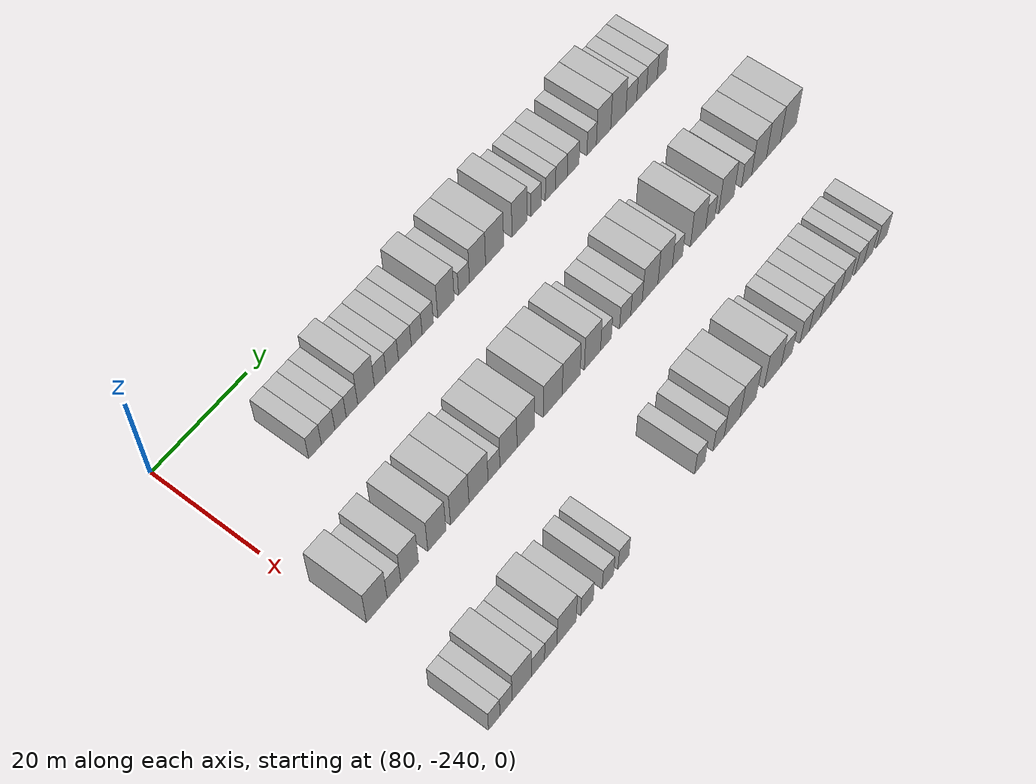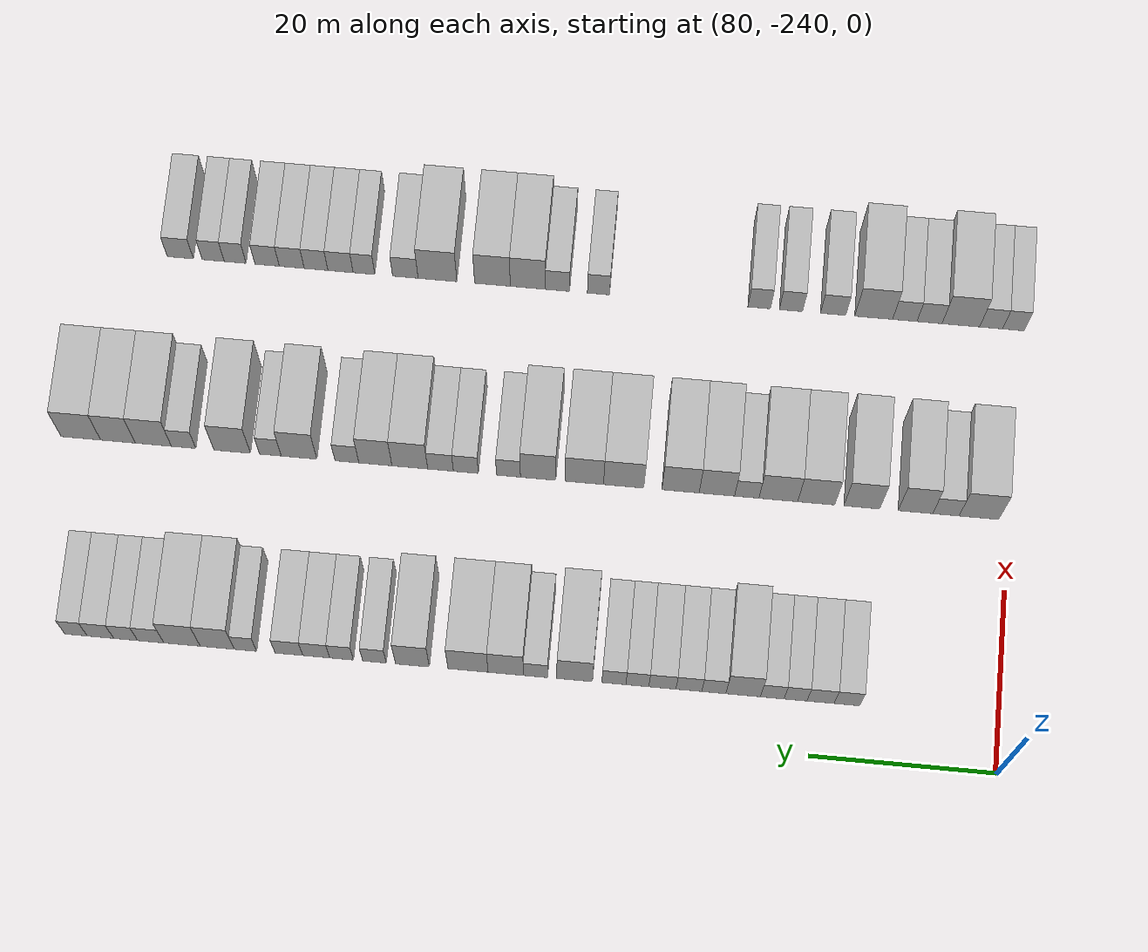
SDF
<sdf version="1.6">
 <world name="default">
  <model name="building_603">
   <static>1</static>
   <pose>91.0000 -223.7125 0 0.000000 0.000000 0.000000</pose>
   <link name="link">
    <pose>0 0 3.00 0 0 0</pose>
    <collision name="collision"><geometry><box><size>10.0000 2.7314 6.0000</size></box></geometry></collision>
    <visual name="visual">
     <cast_shadows>0</cast_shadows>
     <geometry><box><size>10.0000 2.7314 6.0000</size></box></geometry>
     <material>
      <script>
       <uri>model://HANNAS_wall/materials/scripts</uri>
       <uri>model://HANNAS_wall/materials/textures</uri>
       <name>vrc/HANNAS_wall</name>
      </script>
     </material>
    </visual>
   </link>
  </model>
  <model name="building_604">
   <static>1</static>
   <pose>91.0000 -220.8828 0 0.000000 0.000000 0.000000</pose>
   <link name="link">
    <pose>0 0 3.00 0 0 0</pose>
    <collision name="collision"><geometry><box><size>10.0000 2.9280 6.0000</size></box></geometry></collision>
    <visual name="visual">
     <cast_shadows>0</cast_shadows>
     <geometry><box><size>10.0000 2.9280 6.0000</size></box></geometry>
     <material>
      <script>
       <uri>model://HANNAS_wall/materials/scripts</uri>
       <uri>model://HANNAS_wall/materials/textures</uri>
       <name>vrc/HANNAS_wall</name>
      </script>
     </material>
    </visual>
   </link>
  </model>
  <model name="building_605">
   <static>1</static>
   <pose>91.0000 -218.1889 0 0.000000 0.000000 0.000000</pose>
   <link name="link">
    <pose>0 0 3.00 0 0 0</pose>
    <collision name="collision"><geometry><box><size>10.0000 2.4597 6.0000</size></box></geometry></collision>
    <visual name="visual">
     <cast_shadows>0</cast_shadows>
     <geometry><box><size>10.0000 2.4597 6.0000</size></box></geometry>
     <material>
      <script>
       <uri>model://HANNAS_wall/materials/scripts</uri>
       <uri>model://HANNAS_wall/materials/textures</uri>
       <name>vrc/HANNAS_wall</name>
      </script>
     </material>
    </visual>
   </link>
  </model>
  <model name="building_606">
   <static>1</static>
   <pose>91.0000 -215.6946 0 0.000000 0.000000 0.000000</pose>
   <link name="link">
    <pose>0 0 3.00 0 0 0</pose>
    <collision name="collision"><geometry><box><size>10.0000 2.5290 6.0000</size></box></geometry></collision>
    <visual name="visual">
     <cast_shadows>0</cast_shadows>
     <geometry><box><size>10.0000 2.5290 6.0000</size></box></geometry>
     <material>
      <script>
       <uri>model://HANNAS_wall/materials/scripts</uri>
       <uri>model://HANNAS_wall/materials/textures</uri>
       <name>vrc/HANNAS_wall</name>
      </script>
     </material>
    </visual>
   </link>
  </model>
  <model name="building_607">
   <static>1</static>
   <pose>91.0000 -212.5778 0 0.000000 0.000000 0.000000</pose>
   <link name="link">
    <pose>0 0 4.50 0 0 0</pose>
    <collision name="collision"><geometry><box><size>10.0000 3.7046 9.0000</size></box></geometry></collision>
    <visual name="visual">
     <cast_shadows>0</cast_shadows>
     <geometry><box><size>10.0000 3.7046 9.0000</size></box></geometry>
     <material>
      <script>
       <uri>model://HANNAS_wall/materials/scripts</uri>
       <uri>model://HANNAS_wall/materials/textures</uri>
       <name>vrc/HANNAS_wall</name>
      </script>
     </material>
    </visual>
   </link>
  </model>
  <model name="building_608">
   <static>1</static>
   <pose>91.0000 -209.4321 0 0.000000 0.000000 0.000000</pose>
   <link name="link">
    <pose>0 0 3.00 0 0 0</pose>
    <collision name="collision"><geometry><box><size>10.0000 2.5869 6.0000</size></box></geometry></collision>
    <visual name="visual">
     <cast_shadows>0</cast_shadows>
     <geometry><box><size>10.0000 2.5869 6.0000</size></box></geometry>
     <material>
      <script>
       <uri>model://HANNAS_wall/materials/scripts</uri>
       <uri>model://HANNAS_wall/materials/textures</uri>
       <name>vrc/HANNAS_wall</name>
      </script>
     </material>
    </visual>
   </link>
  </model>
  <model name="building_609">
   <static>1</static>
   <pose>91.0000 -206.7527 0 0.000000 0.000000 0.000000</pose>
   <link name="link">
    <pose>0 0 3.00 0 0 0</pose>
    <collision name="collision"><geometry><box><size>10.0000 2.7718 6.0000</size></box></geometry></collision>
    <visual name="visual">
     <cast_shadows>0</cast_shadows>
     <geometry><box><size>10.0000 2.7718 6.0000</size></box></geometry>
     <material>
      <script>
       <uri>model://HANNAS_wall/materials/scripts</uri>
       <uri>model://HANNAS_wall/materials/textures</uri>
       <name>vrc/HANNAS_wall</name>
      </script>
     </material>
    </visual>
   </link>
  </model>
  <model name="building_610">
   <static>1</static>
   <pose>91.0000 -203.9081 0 0.000000 0.000000 0.000000</pose>
   <link name="link">
    <pose>0 0 3.00 0 0 0</pose>
    <collision name="collision"><geometry><box><size>10.0000 2.9176 6.0000</size></box></geometry></collision>
    <visual name="visual">
     <cast_shadows>0</cast_shadows>
     <geometry><box><size>10.0000 2.9176 6.0000</size></box></geometry>
     <material>
      <script>
       <uri>model://HANNAS_wall/materials/scripts</uri>
       <uri>model://HANNAS_wall/materials/textures</uri>
       <name>vrc/HANNAS_wall</name>
      </script>
     </material>
    </visual>
   </link>
  </model>
  <model name="building_611">
   <static>1</static>
   <pose>91.0000 -201.2171 0 0.000000 0.000000 0.000000</pose>
   <link name="link">
    <pose>0 0 3.00 0 0 0</pose>
    <collision name="collision"><geometry><box><size>10.0000 2.4643 6.0000</size></box></geometry></collision>
    <visual name="visual">
     <cast_shadows>0</cast_shadows>
     <geometry><box><size>10.0000 2.4643 6.0000</size></box></geometry>
     <material>
      <script>
       <uri>model://HANNAS_wall/materials/scripts</uri>
       <uri>model://HANNAS_wall/materials/textures</uri>
       <name>vrc/HANNAS_wall</name>
      </script>
     </material>
    </visual>
   </link>
  </model>
  <model name="building_612">
   <static>1</static>
   <pose>91.0000 -198.6938 0 0.000000 0.000000 0.000000</pose>
   <link name="link">
    <pose>0 0 3.00 0 0 0</pose>
    <collision name="collision"><geometry><box><size>10.0000 2.5825 6.0000</size></box></geometry></collision>
    <visual name="visual">
     <cast_shadows>0</cast_shadows>
     <geometry><box><size>10.0000 2.5825 6.0000</size></box></geometry>
     <material>
      <script>
       <uri>model://HANNAS_wall/materials/scripts</uri>
       <uri>model://HANNAS_wall/materials/textures</uri>
       <name>vrc/HANNAS_wall</name>
      </script>
     </material>
    </visual>
   </link>
  </model>
  <model name="building_613">
   <static>1</static>
   <pose>91.0000 -194.4801 0 0.000000 0.000000 0.000000</pose>
   <link name="link">
    <pose>0 0 4.50 0 0 0</pose>
    <collision name="collision"><geometry><box><size>10.0000 3.8449 9.0000</size></box></geometry></collision>
    <visual name="visual">
     <cast_shadows>0</cast_shadows>
     <geometry><box><size>10.0000 3.8449 9.0000</size></box></geometry>
     <material>
      <script>
       <uri>model://HANNAS_wall/materials/scripts</uri>
       <uri>model://HANNAS_wall/materials/textures</uri>
       <name>vrc/HANNAS_wall</name>
      </script>
     </material>
    </visual>
   </link>
  </model>
  <model name="building_614">
   <static>1</static>
   <pose>91.0000 -190.2698 0 0.000000 0.000000 0.000000</pose>
   <link name="link">
    <pose>0 0 3.00 0 0 0</pose>
    <collision name="collision"><geometry><box><size>10.0000 2.5757 6.0000</size></box></geometry></collision>
    <visual name="visual">
     <cast_shadows>0</cast_shadows>
     <geometry><box><size>10.0000 2.5757 6.0000</size></box></geometry>
     <material>
      <script>
       <uri>model://HANNAS_wall/materials/scripts</uri>
       <uri>model://HANNAS_wall/materials/textures</uri>
       <name>vrc/HANNAS_wall</name>
      </script>
     </material>
    </visual>
   </link>
  </model>
  <model name="building_615">
   <static>1</static>
   <pose>91.0000 -187.0722 0 0.000000 0.000000 0.000000</pose>
   <link name="link">
    <pose>0 0 4.50 0 0 0</pose>
    <collision name="collision"><geometry><box><size>10.0000 3.8196 9.0000</size></box></geometry></collision>
    <visual name="visual">
     <cast_shadows>0</cast_shadows>
     <geometry><box><size>10.0000 3.8196 9.0000</size></box></geometry>
     <material>
      <script>
       <uri>model://HANNAS_wall/materials/scripts</uri>
       <uri>model://HANNAS_wall/materials/textures</uri>
       <name>vrc/HANNAS_wall</name>
      </script>
     </material>
    </visual>
   </link>
  </model>
  <model name="building_616">
   <static>1</static>
   <pose>91.0000 -182.9979 0 0.000000 0.000000 0.000000</pose>
   <link name="link">
    <pose>0 0 4.50 0 0 0</pose>
    <collision name="collision"><geometry><box><size>10.0000 4.3289 9.0000</size></box></geometry></collision>
    <visual name="visual">
     <cast_shadows>0</cast_shadows>
     <geometry><box><size>10.0000 4.3289 9.0000</size></box></geometry>
     <material>
      <script>
       <uri>model://HANNAS_wall/materials/scripts</uri>
       <uri>model://HANNAS_wall/materials/textures</uri>
       <name>vrc/HANNAS_wall</name>
      </script>
     </material>
    </visual>
   </link>
  </model>
  <model name="building_617">
   <static>1</static>
   <pose>91.0000 -177.0053 0 0.000000 0.000000 0.000000</pose>
   <link name="link">
    <pose>0 0 4.50 0 0 0</pose>
    <collision name="collision"><geometry><box><size>10.0000 3.6564 9.0000</size></box></geometry></collision>
    <visual name="visual">
     <cast_shadows>0</cast_shadows>
     <geometry><box><size>10.0000 3.6564 9.0000</size></box></geometry>
     <material>
      <script>
       <uri>model://HANNAS_wall/materials/scripts</uri>
       <uri>model://HANNAS_wall/materials/textures</uri>
       <name>vrc/HANNAS_wall</name>
      </script>
     </material>
    </visual>
   </link>
  </model>
  <model name="building_618">
   <static>1</static>
   <pose>91.0000 -172.9043 0 0.000000 0.000000 0.000000</pose>
   <link name="link">
    <pose>0 0 3.00 0 0 0</pose>
    <collision name="collision"><geometry><box><size>10.0000 2.5455 6.0000</size></box></geometry></collision>
    <visual name="visual">
     <cast_shadows>0</cast_shadows>
     <geometry><box><size>10.0000 2.5455 6.0000</size></box></geometry>
     <material>
      <script>
       <uri>model://HANNAS_wall/materials/scripts</uri>
       <uri>model://HANNAS_wall/materials/textures</uri>
       <name>vrc/HANNAS_wall</name>
      </script>
     </material>
    </visual>
   </link>
  </model>
  <model name="building_619">
   <static>1</static>
   <pose>91.0000 -169.3547 0 0.000000 0.000000 0.000000</pose>
   <link name="link">
    <pose>0 0 3.00 0 0 0</pose>
    <collision name="collision"><geometry><box><size>10.0000 2.5538 6.0000</size></box></geometry></collision>
    <visual name="visual">
     <cast_shadows>0</cast_shadows>
     <geometry><box><size>10.0000 2.5538 6.0000</size></box></geometry>
     <material>
      <script>
       <uri>model://HANNAS_wall/materials/scripts</uri>
       <uri>model://HANNAS_wall/materials/textures</uri>
       <name>vrc/HANNAS_wall</name>
      </script>
     </material>
    </visual>
   </link>
  </model>
  <model name="building_620">
   <static>1</static>
   <pose>91.0000 -166.6211 0 0.000000 0.000000 0.000000</pose>
   <link name="link">
    <pose>0 0 3.00 0 0 0</pose>
    <collision name="collision"><geometry><box><size>10.0000 2.9133 6.0000</size></box></geometry></collision>
    <visual name="visual">
     <cast_shadows>0</cast_shadows>
     <geometry><box><size>10.0000 2.9133 6.0000</size></box></geometry>
     <material>
      <script>
       <uri>model://HANNAS_wall/materials/scripts</uri>
       <uri>model://HANNAS_wall/materials/textures</uri>
       <name>vrc/HANNAS_wall</name>
      </script>
     </material>
    </visual>
   </link>
  </model>
  <model name="building_621">
   <static>1</static>
   <pose>91.0000 -163.6671 0 0.000000 0.000000 0.000000</pose>
   <link name="link">
    <pose>0 0 3.00 0 0 0</pose>
    <collision name="collision"><geometry><box><size>10.0000 2.9948 6.0000</size></box></geometry></collision>
    <visual name="visual">
     <cast_shadows>0</cast_shadows>
     <geometry><box><size>10.0000 2.9948 6.0000</size></box></geometry>
     <material>
      <script>
       <uri>model://HANNAS_wall/materials/scripts</uri>
       <uri>model://HANNAS_wall/materials/textures</uri>
       <name>vrc/HANNAS_wall</name>
      </script>
     </material>
    </visual>
   </link>
  </model>
  <model name="building_622">
   <static>1</static>
   <pose>91.0000 -158.9616 0 0.000000 0.000000 0.000000</pose>
   <link name="link">
    <pose>0 0 3.00 0 0 0</pose>
    <collision name="collision"><geometry><box><size>10.0000 2.4163 6.0000</size></box></geometry></collision>
    <visual name="visual">
     <cast_shadows>0</cast_shadows>
     <geometry><box><size>10.0000 2.4163 6.0000</size></box></geometry>
     <material>
      <script>
       <uri>model://HANNAS_wall/materials/scripts</uri>
       <uri>model://HANNAS_wall/materials/textures</uri>
       <name>vrc/HANNAS_wall</name>
      </script>
     </material>
    </visual>
   </link>
  </model>
  <model name="building_623">
   <static>1</static>
   <pose>91.0000 -155.9003 0 0.000000 0.000000 0.000000</pose>
   <link name="link">
    <pose>0 0 4.50 0 0 0</pose>
    <collision name="collision"><geometry><box><size>10.0000 3.7063 9.0000</size></box></geometry></collision>
    <visual name="visual">
     <cast_shadows>0</cast_shadows>
     <geometry><box><size>10.0000 3.7063 9.0000</size></box></geometry>
     <material>
      <script>
       <uri>model://HANNAS_wall/materials/scripts</uri>
       <uri>model://HANNAS_wall/materials/textures</uri>
       <name>vrc/HANNAS_wall</name>
      </script>
     </material>
    </visual>
   </link>
  </model>
  <model name="building_624">
   <static>1</static>
   <pose>91.0000 -152.0762 0 0.000000 0.000000 0.000000</pose>
   <link name="link">
    <pose>0 0 4.50 0 0 0</pose>
    <collision name="collision"><geometry><box><size>10.0000 3.9418 9.0000</size></box></geometry></collision>
    <visual name="visual">
     <cast_shadows>0</cast_shadows>
     <geometry><box><size>10.0000 3.9418 9.0000</size></box></geometry>
     <material>
      <script>
       <uri>model://HANNAS_wall/materials/scripts</uri>
       <uri>model://HANNAS_wall/materials/textures</uri>
       <name>vrc/HANNAS_wall</name>
      </script>
     </material>
    </visual>
   </link>
  </model>
  <model name="building_625">
   <static>1</static>
   <pose>91.0000 -148.6849 0 0.000000 0.000000 0.000000</pose>
   <link name="link">
    <pose>0 0 3.00 0 0 0</pose>
    <collision name="collision"><geometry><box><size>10.0000 2.8409 6.0000</size></box></geometry></collision>
    <visual name="visual">
     <cast_shadows>0</cast_shadows>
     <geometry><box><size>10.0000 2.8409 6.0000</size></box></geometry>
     <material>
      <script>
       <uri>model://HANNAS_wall/materials/scripts</uri>
       <uri>model://HANNAS_wall/materials/textures</uri>
       <name>vrc/HANNAS_wall</name>
      </script>
     </material>
    </visual>
   </link>
  </model>
  <model name="building_626">
   <static>1</static>
   <pose>91.0000 -145.9632 0 0.000000 0.000000 0.000000</pose>
   <link name="link">
    <pose>0 0 3.00 0 0 0</pose>
    <collision name="collision"><geometry><box><size>10.0000 2.6025 6.0000</size></box></geometry></collision>
    <visual name="visual">
     <cast_shadows>0</cast_shadows>
     <geometry><box><size>10.0000 2.6025 6.0000</size></box></geometry>
     <material>
      <script>
       <uri>model://HANNAS_wall/materials/scripts</uri>
       <uri>model://HANNAS_wall/materials/textures</uri>
       <name>vrc/HANNAS_wall</name>
      </script>
     </material>
    </visual>
   </link>
  </model>
  <model name="building_627">
   <static>1</static>
   <pose>91.0000 -143.2284 0 0.000000 0.000000 0.000000</pose>
   <link name="link">
    <pose>0 0 3.00 0 0 0</pose>
    <collision name="collision"><geometry><box><size>10.0000 2.8670 6.0000</size></box></geometry></collision>
    <visual name="visual">
     <cast_shadows>0</cast_shadows>
     <geometry><box><size>10.0000 2.8670 6.0000</size></box></geometry>
     <material>
      <script>
       <uri>model://HANNAS_wall/materials/scripts</uri>
       <uri>model://HANNAS_wall/materials/textures</uri>
       <name>vrc/HANNAS_wall</name>
      </script>
     </material>
    </visual>
   </link>
  </model>
  <model name="building_628">
   <static>1</static>
   <pose>91.0000 -140.5809 0 0.000000 0.000000 0.000000</pose>
   <link name="link">
    <pose>0 0 3.00 0 0 0</pose>
    <collision name="collision"><geometry><box><size>10.0000 2.4280 6.0000</size></box></geometry></collision>
    <visual name="visual">
     <cast_shadows>0</cast_shadows>
     <geometry><box><size>10.0000 2.4280 6.0000</size></box></geometry>
     <material>
      <script>
       <uri>model://HANNAS_wall/materials/scripts</uri>
       <uri>model://HANNAS_wall/materials/textures</uri>
       <name>vrc/HANNAS_wall</name>
      </script>
     </material>
    </visual>
   </link>
  </model>
  <model name="building_792">
   <static>1</static>
   <pose>113.0000 -236.7691 0 0.000000 0.000000 0.000000</pose>
   <link name="link">
    <pose>0 0 4.50 0 0 0</pose>
    <collision name="collision"><geometry><box><size>10.0000 4.3307 9.0000</size></box></geometry></collision>
    <visual name="visual">
     <cast_shadows>0</cast_shadows>
     <geometry><box><size>10.0000 4.3307 9.0000</size></box></geometry>
     <material>
      <script>
       <uri>model://HANNAS_wall/materials/scripts</uri>
       <uri>model://HANNAS_wall/materials/textures</uri>
       <name>vrc/HANNAS_wall</name>
      </script>
     </material>
    </visual>
   </link>
  </model>
  <model name="building_793">
   <static>1</static>
   <pose>113.0000 -233.1613 0 0.000000 0.000000 0.000000</pose>
   <link name="link">
    <pose>0 0 3.00 0 0 0</pose>
    <collision name="collision"><geometry><box><size>10.0000 2.8848 6.0000</size></box></geometry></collision>
    <visual name="visual">
     <cast_shadows>0</cast_shadows>
     <geometry><box><size>10.0000 2.8848 6.0000</size></box></geometry>
     <material>
      <script>
       <uri>model://HANNAS_wall/materials/scripts</uri>
       <uri>model://HANNAS_wall/materials/textures</uri>
       <name>vrc/HANNAS_wall</name>
      </script>
     </material>
    </visual>
   </link>
  </model>
  <model name="building_794">
   <static>1</static>
   <pose>113.0000 -229.8340 0 0.000000 0.000000 0.000000</pose>
   <link name="link">
    <pose>0 0 4.50 0 0 0</pose>
    <collision name="collision"><geometry><box><size>10.0000 3.7698 9.0000</size></box></geometry></collision>
    <visual name="visual">
     <cast_shadows>0</cast_shadows>
     <geometry><box><size>10.0000 3.7698 9.0000</size></box></geometry>
     <material>
      <script>
       <uri>model://HANNAS_wall/materials/scripts</uri>
       <uri>model://HANNAS_wall/materials/textures</uri>
       <name>vrc/HANNAS_wall</name>
      </script>
     </material>
    </visual>
   </link>
  </model>
  <model name="building_795">
   <static>1</static>
   <pose>113.0000 -223.9851 0 0.000000 0.000000 0.000000</pose>
   <link name="link">
    <pose>0 0 4.50 0 0 0</pose>
    <collision name="collision"><geometry><box><size>10.0000 3.9279 9.0000</size></box></geometry></collision>
    <visual name="visual">
     <cast_shadows>0</cast_shadows>
     <geometry><box><size>10.0000 3.9279 9.0000</size></box></geometry>
     <material>
      <script>
       <uri>model://HANNAS_wall/materials/scripts</uri>
       <uri>model://HANNAS_wall/materials/textures</uri>
       <name>vrc/HANNAS_wall</name>
      </script>
     </material>
    </visual>
   </link>
  </model>
  <model name="building_796">
   <static>1</static>
   <pose>113.0000 -218.9914 0 0.000000 0.000000 0.000000</pose>
   <link name="link">
    <pose>0 0 4.50 0 0 0</pose>
    <collision name="collision"><geometry><box><size>10.0000 4.0594 9.0000</size></box></geometry></collision>
    <visual name="visual">
     <cast_shadows>0</cast_shadows>
     <geometry><box><size>10.0000 4.0594 9.0000</size></box></geometry>
     <material>
      <script>
       <uri>model://HANNAS_wall/materials/scripts</uri>
       <uri>model://HANNAS_wall/materials/textures</uri>
       <name>vrc/HANNAS_wall</name>
      </script>
     </material>
    </visual>
   </link>
  </model>
  <model name="building_797">
   <static>1</static>
   <pose>113.0000 -214.8413 0 0.000000 0.000000 0.000000</pose>
   <link name="link">
    <pose>0 0 4.50 0 0 0</pose>
    <collision name="collision"><geometry><box><size>10.0000 4.2407 9.0000</size></box></geometry></collision>
    <visual name="visual">
     <cast_shadows>0</cast_shadows>
     <geometry><box><size>10.0000 4.2407 9.0000</size></box></geometry>
     <material>
      <script>
       <uri>model://HANNAS_wall/materials/scripts</uri>
       <uri>model://HANNAS_wall/materials/textures</uri>
       <name>vrc/HANNAS_wall</name>
      </script>
     </material>
    </visual>
   </link>
  </model>
  <model name="building_798">
   <static>1</static>
   <pose>113.0000 -211.3909 0 0.000000 0.000000 0.000000</pose>
   <link name="link">
    <pose>0 0 3.00 0 0 0</pose>
    <collision name="collision"><geometry><box><size>10.0000 2.6601 6.0000</size></box></geometry></collision>
    <visual name="visual">
     <cast_shadows>0</cast_shadows>
     <geometry><box><size>10.0000 2.6601 6.0000</size></box></geometry>
     <material>
      <script>
       <uri>model://HANNAS_wall/materials/scripts</uri>
       <uri>model://HANNAS_wall/materials/textures</uri>
       <name>vrc/HANNAS_wall</name>
      </script>
     </material>
    </visual>
   </link>
  </model>
  <model name="building_799">
   <static>1</static>
   <pose>113.0000 -208.1153 0 0.000000 0.000000 0.000000</pose>
   <link name="link">
    <pose>0 0 4.50 0 0 0</pose>
    <collision name="collision"><geometry><box><size>10.0000 3.8912 9.0000</size></box></geometry></collision>
    <visual name="visual">
     <cast_shadows>0</cast_shadows>
     <geometry><box><size>10.0000 3.8912 9.0000</size></box></geometry>
     <material>
      <script>
       <uri>model://HANNAS_wall/materials/scripts</uri>
       <uri>model://HANNAS_wall/materials/textures</uri>
       <name>vrc/HANNAS_wall</name>
      </script>
     </material>
    </visual>
   </link>
  </model>
  <model name="building_800">
   <static>1</static>
   <pose>113.0000 -204.1293 0 0.000000 0.000000 0.000000</pose>
   <link name="link">
    <pose>0 0 4.50 0 0 0</pose>
    <collision name="collision"><geometry><box><size>10.0000 4.0808 9.0000</size></box></geometry></collision>
    <visual name="visual">
     <cast_shadows>0</cast_shadows>
     <geometry><box><size>10.0000 4.0808 9.0000</size></box></geometry>
     <material>
      <script>
       <uri>model://HANNAS_wall/materials/scripts</uri>
       <uri>model://HANNAS_wall/materials/textures</uri>
       <name>vrc/HANNAS_wall</name>
      </script>
     </material>
    </visual>
   </link>
  </model>
  <model name="building_801">
   <static>1</static>
   <pose>113.0000 -197.8849 0 0.000000 0.000000 0.000000</pose>
   <link name="link">
    <pose>0 0 4.50 0 0 0</pose>
    <collision name="collision"><geometry><box><size>10.0000 4.4080 9.0000</size></box></geometry></collision>
    <visual name="visual">
     <cast_shadows>0</cast_shadows>
     <geometry><box><size>10.0000 4.4080 9.0000</size></box></geometry>
     <material>
      <script>
       <uri>model://HANNAS_wall/materials/scripts</uri>
       <uri>model://HANNAS_wall/materials/textures</uri>
       <name>vrc/HANNAS_wall</name>
      </script>
     </material>
    </visual>
   </link>
  </model>
  <model name="building_802">
   <static>1</static>
   <pose>113.0000 -193.5605 0 0.000000 0.000000 0.000000</pose>
   <link name="link">
    <pose>0 0 4.50 0 0 0</pose>
    <collision name="collision"><geometry><box><size>10.0000 4.2409 9.0000</size></box></geometry></collision>
    <visual name="visual">
     <cast_shadows>0</cast_shadows>
     <geometry><box><size>10.0000 4.2409 9.0000</size></box></geometry>
     <material>
      <script>
       <uri>model://HANNAS_wall/materials/scripts</uri>
       <uri>model://HANNAS_wall/materials/textures</uri>
       <name>vrc/HANNAS_wall</name>
      </script>
     </material>
    </visual>
   </link>
  </model>
  <model name="building_803">
   <static>1</static>
   <pose>113.0000 -188.4972 0 0.000000 0.000000 0.000000</pose>
   <link name="link">
    <pose>0 0 4.50 0 0 0</pose>
    <collision name="collision"><geometry><box><size>10.0000 3.8856 9.0000</size></box></geometry></collision>
    <visual name="visual">
     <cast_shadows>0</cast_shadows>
     <geometry><box><size>10.0000 3.8856 9.0000</size></box></geometry>
     <material>
      <script>
       <uri>model://HANNAS_wall/materials/scripts</uri>
       <uri>model://HANNAS_wall/materials/textures</uri>
       <name>vrc/HANNAS_wall</name>
      </script>
     </material>
    </visual>
   </link>
  </model>
  <model name="building_804">
   <static>1</static>
   <pose>113.0000 -185.2395 0 0.000000 0.000000 0.000000</pose>
   <link name="link">
    <pose>0 0 3.00 0 0 0</pose>
    <collision name="collision"><geometry><box><size>10.0000 2.6298 6.0000</size></box></geometry></collision>
    <visual name="visual">
     <cast_shadows>0</cast_shadows>
     <geometry><box><size>10.0000 2.6298 6.0000</size></box></geometry>
     <material>
      <script>
       <uri>model://HANNAS_wall/materials/scripts</uri>
       <uri>model://HANNAS_wall/materials/textures</uri>
       <name>vrc/HANNAS_wall</name>
      </script>
     </material>
    </visual>
   </link>
  </model>
  <model name="building_805">
   <static>1</static>
   <pose>113.0000 -180.5488 0 0.000000 0.000000 0.000000</pose>
   <link name="link">
    <pose>0 0 3.00 0 0 0</pose>
    <collision name="collision"><geometry><box><size>10.0000 2.7516 6.0000</size></box></geometry></collision>
    <visual name="visual">
     <cast_shadows>0</cast_shadows>
     <geometry><box><size>10.0000 2.7516 6.0000</size></box></geometry>
     <material>
      <script>
       <uri>model://HANNAS_wall/materials/scripts</uri>
       <uri>model://HANNAS_wall/materials/textures</uri>
       <name>vrc/HANNAS_wall</name>
      </script>
     </material>
    </visual>
   </link>
  </model>
  <model name="building_806">
   <static>1</static>
   <pose>113.0000 -177.7592 0 0.000000 0.000000 0.000000</pose>
   <link name="link">
    <pose>0 0 3.00 0 0 0</pose>
    <collision name="collision"><geometry><box><size>10.0000 2.8277 6.0000</size></box></geometry></collision>
    <visual name="visual">
     <cast_shadows>0</cast_shadows>
     <geometry><box><size>10.0000 2.8277 6.0000</size></box></geometry>
     <material>
      <script>
       <uri>model://HANNAS_wall/materials/scripts</uri>
       <uri>model://HANNAS_wall/materials/textures</uri>
       <name>vrc/HANNAS_wall</name>
      </script>
     </material>
    </visual>
   </link>
  </model>
  <model name="building_807">
   <static>1</static>
   <pose>113.0000 -174.3783 0 0.000000 0.000000 0.000000</pose>
   <link name="link">
    <pose>0 0 4.50 0 0 0</pose>
    <collision name="collision"><geometry><box><size>10.0000 3.9342 9.0000</size></box></geometry></collision>
    <visual name="visual">
     <cast_shadows>0</cast_shadows>
     <geometry><box><size>10.0000 3.9342 9.0000</size></box></geometry>
     <material>
      <script>
       <uri>model://HANNAS_wall/materials/scripts</uri>
       <uri>model://HANNAS_wall/materials/textures</uri>
       <name>vrc/HANNAS_wall</name>
      </script>
     </material>
    </visual>
   </link>
  </model>
  <model name="building_808">
   <static>1</static>
   <pose>113.0000 -170.5831 0 0.000000 0.000000 0.000000</pose>
   <link name="link">
    <pose>0 0 4.50 0 0 0</pose>
    <collision name="collision"><geometry><box><size>10.0000 3.6562 9.0000</size></box></geometry></collision>
    <visual name="visual">
     <cast_shadows>0</cast_shadows>
     <geometry><box><size>10.0000 3.6562 9.0000</size></box></geometry>
     <material>
      <script>
       <uri>model://HANNAS_wall/materials/scripts</uri>
       <uri>model://HANNAS_wall/materials/textures</uri>
       <name>vrc/HANNAS_wall</name>
      </script>
     </material>
    </visual>
   </link>
  </model>
  <model name="building_809">
   <static>1</static>
   <pose>113.0000 -167.4416 0 0.000000 0.000000 0.000000</pose>
   <link name="link">
    <pose>0 0 3.00 0 0 0</pose>
    <collision name="collision"><geometry><box><size>10.0000 2.6267 6.0000</size></box></geometry></collision>
    <visual name="visual">
     <cast_shadows>0</cast_shadows>
     <geometry><box><size>10.0000 2.6267 6.0000</size></box></geometry>
     <material>
      <script>
       <uri>model://HANNAS_wall/materials/scripts</uri>
       <uri>model://HANNAS_wall/materials/textures</uri>
       <name>vrc/HANNAS_wall</name>
      </script>
     </material>
    </visual>
   </link>
  </model>
  <model name="building_810">
   <static>1</static>
   <pose>113.0000 -162.1617 0 0.000000 0.000000 0.000000</pose>
   <link name="link">
    <pose>0 0 4.50 0 0 0</pose>
    <collision name="collision"><geometry><box><size>10.0000 3.9331 9.0000</size></box></geometry></collision>
    <visual name="visual">
     <cast_shadows>0</cast_shadows>
     <geometry><box><size>10.0000 3.9331 9.0000</size></box></geometry>
     <material>
      <script>
       <uri>model://HANNAS_wall/materials/scripts</uri>
       <uri>model://HANNAS_wall/materials/textures</uri>
       <name>vrc/HANNAS_wall</name>
      </script>
     </material>
    </visual>
   </link>
  </model>
  <model name="building_811">
   <static>1</static>
   <pose>113.0000 -158.9940 0 0.000000 0.000000 0.000000</pose>
   <link name="link">
    <pose>0 0 3.00 0 0 0</pose>
    <collision name="collision"><geometry><box><size>10.0000 2.4023 6.0000</size></box></geometry></collision>
    <visual name="visual">
     <cast_shadows>0</cast_shadows>
     <geometry><box><size>10.0000 2.4023 6.0000</size></box></geometry>
     <material>
      <script>
       <uri>model://HANNAS_wall/materials/scripts</uri>
       <uri>model://HANNAS_wall/materials/textures</uri>
       <name>vrc/HANNAS_wall</name>
      </script>
     </material>
    </visual>
   </link>
  </model>
  <model name="building_812">
   <static>1</static>
   <pose>113.0000 -154.7709 0 0.000000 0.000000 0.000000</pose>
   <link name="link">
    <pose>0 0 4.50 0 0 0</pose>
    <collision name="collision"><geometry><box><size>10.0000 4.0440 9.0000</size></box></geometry></collision>
    <visual name="visual">
     <cast_shadows>0</cast_shadows>
     <geometry><box><size>10.0000 4.0440 9.0000</size></box></geometry>
     <material>
      <script>
       <uri>model://HANNAS_wall/materials/scripts</uri>
       <uri>model://HANNAS_wall/materials/textures</uri>
       <name>vrc/HANNAS_wall</name>
      </script>
     </material>
    </visual>
   </link>
  </model>
  <model name="building_813">
   <static>1</static>
   <pose>113.0000 -149.3917 0 0.000000 0.000000 0.000000</pose>
   <link name="link">
    <pose>0 0 3.00 0 0 0</pose>
    <collision name="collision"><geometry><box><size>10.0000 2.7144 6.0000</size></box></geometry></collision>
    <visual name="visual">
     <cast_shadows>0</cast_shadows>
     <geometry><box><size>10.0000 2.7144 6.0000</size></box></geometry>
     <material>
      <script>
       <uri>model://HANNAS_wall/materials/scripts</uri>
       <uri>model://HANNAS_wall/materials/textures</uri>
       <name>vrc/HANNAS_wall</name>
      </script>
     </material>
    </visual>
   </link>
  </model>
  <model name="building_814">
   <static>1</static>
   <pose>113.0000 -146.0285 0 0.000000 0.000000 0.000000</pose>
   <link name="link">
    <pose>0 0 4.50 0 0 0</pose>
    <collision name="collision"><geometry><box><size>10.0000 4.0119 9.0000</size></box></geometry></collision>
    <visual name="visual">
     <cast_shadows>0</cast_shadows>
     <geometry><box><size>10.0000 4.0119 9.0000</size></box></geometry>
     <material>
      <script>
       <uri>model://HANNAS_wall/materials/scripts</uri>
       <uri>model://HANNAS_wall/materials/textures</uri>
       <name>vrc/HANNAS_wall</name>
      </script>
     </material>
    </visual>
   </link>
  </model>
  <model name="building_815">
   <static>1</static>
   <pose>113.0000 -142.1133 0 0.000000 0.000000 0.000000</pose>
   <link name="link">
    <pose>0 0 4.50 0 0 0</pose>
    <collision name="collision"><geometry><box><size>10.0000 3.8186 9.0000</size></box></geometry></collision>
    <visual name="visual">
     <cast_shadows>0</cast_shadows>
     <geometry><box><size>10.0000 3.8186 9.0000</size></box></geometry>
     <material>
      <script>
       <uri>model://HANNAS_wall/materials/scripts</uri>
       <uri>model://HANNAS_wall/materials/textures</uri>
       <name>vrc/HANNAS_wall</name>
      </script>
     </material>
    </visual>
   </link>
  </model>
  <model name="building_816">
   <static>1</static>
   <pose>113.0000 -138.0172 0 0.000000 0.000000 0.000000</pose>
   <link name="link">
    <pose>0 0 4.50 0 0 0</pose>
    <collision name="collision"><geometry><box><size>10.0000 4.3736 9.0000</size></box></geometry></collision>
    <visual name="visual">
     <cast_shadows>0</cast_shadows>
     <geometry><box><size>10.0000 4.3736 9.0000</size></box></geometry>
     <material>
      <script>
       <uri>model://HANNAS_wall/materials/scripts</uri>
       <uri>model://HANNAS_wall/materials/textures</uri>
       <name>vrc/HANNAS_wall</name>
      </script>
     </material>
    </visual>
   </link>
  </model>
  <model name="building_977">
   <static>1</static>
   <pose>135.0000 -239.5597 0 0.000000 0.000000 0.000000</pose>
   <link name="link">
    <pose>0 0 3.00 0 0 0</pose>
    <collision name="collision"><geometry><box><size>10.0000 2.4149 6.0000</size></box></geometry></collision>
    <visual name="visual">
     <cast_shadows>0</cast_shadows>
     <geometry><box><size>10.0000 2.4149 6.0000</size></box></geometry>
     <material>
      <script>
       <uri>model://HANNAS_wall/materials/scripts</uri>
       <uri>model://HANNAS_wall/materials/textures</uri>
       <name>vrc/HANNAS_wall</name>
      </script>
     </material>
    </visual>
   </link>
  </model>
  <model name="building_978">
   <static>1</static>
   <pose>135.0000 -237.0749 0 0.000000 0.000000 0.000000</pose>
   <link name="link">
    <pose>0 0 3.00 0 0 0</pose>
    <collision name="collision"><geometry><box><size>10.0000 2.5547 6.0000</size></box></geometry></collision>
    <visual name="visual">
     <cast_shadows>0</cast_shadows>
     <geometry><box><size>10.0000 2.5547 6.0000</size></box></geometry>
     <material>
      <script>
       <uri>model://HANNAS_wall/materials/scripts</uri>
       <uri>model://HANNAS_wall/materials/textures</uri>
       <name>vrc/HANNAS_wall</name>
      </script>
     </material>
    </visual>
   </link>
  </model>
  <model name="building_979">
   <static>1</static>
   <pose>135.0000 -233.7028 0 0.000000 0.000000 0.000000</pose>
   <link name="link">
    <pose>0 0 4.50 0 0 0</pose>
    <collision name="collision"><geometry><box><size>10.0000 4.1895 9.0000</size></box></geometry></collision>
    <visual name="visual">
     <cast_shadows>0</cast_shadows>
     <geometry><box><size>10.0000 4.1895 9.0000</size></box></geometry>
     <material>
      <script>
       <uri>model://HANNAS_wall/materials/scripts</uri>
       <uri>model://HANNAS_wall/materials/textures</uri>
       <name>vrc/HANNAS_wall</name>
      </script>
     </material>
    </visual>
   </link>
  </model>
  <model name="building_980">
   <static>1</static>
   <pose>135.0000 -230.2094 0 0.000000 0.000000 0.000000</pose>
   <link name="link">
    <pose>0 0 3.00 0 0 0</pose>
    <collision name="collision"><geometry><box><size>10.0000 2.7974 6.0000</size></box></geometry></collision>
    <visual name="visual">
     <cast_shadows>0</cast_shadows>
     <geometry><box><size>10.0000 2.7974 6.0000</size></box></geometry>
     <material>
      <script>
       <uri>model://HANNAS_wall/materials/scripts</uri>
       <uri>model://HANNAS_wall/materials/textures</uri>
       <name>vrc/HANNAS_wall</name>
      </script>
     </material>
    </visual>
   </link>
  </model>
  <model name="building_981">
   <static>1</static>
   <pose>135.0000 -227.4533 0 0.000000 0.000000 0.000000</pose>
   <link name="link">
    <pose>0 0 3.00 0 0 0</pose>
    <collision name="collision"><geometry><box><size>10.0000 2.7147 6.0000</size></box></geometry></collision>
    <visual name="visual">
     <cast_shadows>0</cast_shadows>
     <geometry><box><size>10.0000 2.7147 6.0000</size></box></geometry>
     <material>
      <script>
       <uri>model://HANNAS_wall/materials/scripts</uri>
       <uri>model://HANNAS_wall/materials/textures</uri>
       <name>vrc/HANNAS_wall</name>
      </script>
     </material>
    </visual>
   </link>
  </model>
  <model name="building_982">
   <static>1</static>
   <pose>135.0000 -223.9835 0 0.000000 0.000000 0.000000</pose>
   <link name="link">
    <pose>0 0 4.50 0 0 0</pose>
    <collision name="collision"><geometry><box><size>10.0000 4.2249 9.0000</size></box></geometry></collision>
    <visual name="visual">
     <cast_shadows>0</cast_shadows>
     <geometry><box><size>10.0000 4.2249 9.0000</size></box></geometry>
     <material>
      <script>
       <uri>model://HANNAS_wall/materials/scripts</uri>
       <uri>model://HANNAS_wall/materials/textures</uri>
       <name>vrc/HANNAS_wall</name>
      </script>
     </material>
    </visual>
   </link>
  </model>
  <model name="building_983">
   <static>1</static>
   <pose>135.0000 -219.4609 0 0.000000 0.000000 0.000000</pose>
   <link name="link">
    <pose>0 0 3.00 0 0 0</pose>
    <collision name="collision"><geometry><box><size>10.0000 2.8203 6.0000</size></box></geometry></collision>
    <visual name="visual">
     <cast_shadows>0</cast_shadows>
     <geometry><box><size>10.0000 2.8203 6.0000</size></box></geometry>
     <material>
      <script>
       <uri>model://HANNAS_wall/materials/scripts</uri>
       <uri>model://HANNAS_wall/materials/textures</uri>
       <name>vrc/HANNAS_wall</name>
      </script>
     </material>
    </visual>
   </link>
  </model>
  <model name="building_984">
   <static>1</static>
   <pose>135.0000 -214.7531 0 0.000000 0.000000 0.000000</pose>
   <link name="link">
    <pose>0 0 3.00 0 0 0</pose>
    <collision name="collision"><geometry><box><size>10.0000 2.5952 6.0000</size></box></geometry></collision>
    <visual name="visual">
     <cast_shadows>0</cast_shadows>
     <geometry><box><size>10.0000 2.5952 6.0000</size></box></geometry>
     <material>
      <script>
       <uri>model://HANNAS_wall/materials/scripts</uri>
       <uri>model://HANNAS_wall/materials/textures</uri>
       <name>vrc/HANNAS_wall</name>
      </script>
     </material>
    </visual>
   </link>
  </model>
  <model name="building_985">
   <static>1</static>
   <pose>135.0000 -211.1968 0 0.000000 0.000000 0.000000</pose>
   <link name="link">
    <pose>0 0 3.00 0 0 0</pose>
    <collision name="collision"><geometry><box><size>10.0000 2.5174 6.0000</size></box></geometry></collision>
    <visual name="visual">
     <cast_shadows>0</cast_shadows>
     <geometry><box><size>10.0000 2.5174 6.0000</size></box></geometry>
     <material>
      <script>
       <uri>model://HANNAS_wall/materials/scripts</uri>
       <uri>model://HANNAS_wall/materials/textures</uri>
       <name>vrc/HANNAS_wall</name>
      </script>
     </material>
    </visual>
   </link>
  </model>
  <model name="building_986">
   <static>1</static>
   <pose>135.0000 -193.2124 0 0.000000 0.000000 0.000000</pose>
   <link name="link">
    <pose>0 0 3.00 0 0 0</pose>
    <collision name="collision"><geometry><box><size>10.0000 2.4838 6.0000</size></box></geometry></collision>
    <visual name="visual">
     <cast_shadows>0</cast_shadows>
     <geometry><box><size>10.0000 2.4838 6.0000</size></box></geometry>
     <material>
      <script>
       <uri>model://HANNAS_wall/materials/scripts</uri>
       <uri>model://HANNAS_wall/materials/textures</uri>
       <name>vrc/HANNAS_wall</name>
      </script>
     </material>
    </visual>
   </link>
  </model>
  <model name="building_987">
   <static>1</static>
   <pose>135.0000 -188.6230 0 0.000000 0.000000 0.000000</pose>
   <link name="link">
    <pose>0 0 3.00 0 0 0</pose>
    <collision name="collision"><geometry><box><size>10.0000 2.6949 6.0000</size></box></geometry></collision>
    <visual name="visual">
     <cast_shadows>0</cast_shadows>
     <geometry><box><size>10.0000 2.6949 6.0000</size></box></geometry>
     <material>
      <script>
       <uri>model://HANNAS_wall/materials/scripts</uri>
       <uri>model://HANNAS_wall/materials/textures</uri>
       <name>vrc/HANNAS_wall</name>
      </script>
     </material>
    </visual>
   </link>
  </model>
  <model name="building_988">
   <static>1</static>
   <pose>135.0000 -185.3007 0 0.000000 0.000000 0.000000</pose>
   <link name="link">
    <pose>0 0 4.50 0 0 0</pose>
    <collision name="collision"><geometry><box><size>10.0000 3.9498 9.0000</size></box></geometry></collision>
    <visual name="visual">
     <cast_shadows>0</cast_shadows>
     <geometry><box><size>10.0000 3.9498 9.0000</size></box></geometry>
     <material>
      <script>
       <uri>model://HANNAS_wall/materials/scripts</uri>
       <uri>model://HANNAS_wall/materials/textures</uri>
       <name>vrc/HANNAS_wall</name>
      </script>
     </material>
    </visual>
   </link>
  </model>
  <model name="building_989">
   <static>1</static>
   <pose>135.0000 -181.3255 0 0.000000 0.000000 0.000000</pose>
   <link name="link">
    <pose>0 0 4.50 0 0 0</pose>
    <collision name="collision"><geometry><box><size>10.0000 4.0005 9.0000</size></box></geometry></collision>
    <visual name="visual">
     <cast_shadows>0</cast_shadows>
     <geometry><box><size>10.0000 4.0005 9.0000</size></box></geometry>
     <material>
      <script>
       <uri>model://HANNAS_wall/materials/scripts</uri>
       <uri>model://HANNAS_wall/materials/textures</uri>
       <name>vrc/HANNAS_wall</name>
      </script>
     </material>
    </visual>
   </link>
  </model>
  <model name="building_990">
   <static>1</static>
   <pose>135.0000 -175.1467 0 0.000000 0.000000 0.000000</pose>
   <link name="link">
    <pose>0 0 4.50 0 0 0</pose>
    <collision name="collision"><geometry><box><size>10.0000 4.3571 9.0000</size></box></geometry></collision>
    <visual name="visual">
     <cast_shadows>0</cast_shadows>
     <geometry><box><size>10.0000 4.3571 9.0000</size></box></geometry>
     <material>
      <script>
       <uri>model://HANNAS_wall/materials/scripts</uri>
       <uri>model://HANNAS_wall/materials/textures</uri>
       <name>vrc/HANNAS_wall</name>
      </script>
     </material>
    </visual>
   </link>
  </model>
  <model name="building_991">
   <static>1</static>
   <pose>135.0000 -171.5338 0 0.000000 0.000000 0.000000</pose>
   <link name="link">
    <pose>0 0 3.00 0 0 0</pose>
    <collision name="collision"><geometry><box><size>10.0000 2.8688 6.0000</size></box></geometry></collision>
    <visual name="visual">
     <cast_shadows>0</cast_shadows>
     <geometry><box><size>10.0000 2.8688 6.0000</size></box></geometry>
     <material>
      <script>
       <uri>model://HANNAS_wall/materials/scripts</uri>
       <uri>model://HANNAS_wall/materials/textures</uri>
       <name>vrc/HANNAS_wall</name>
      </script>
     </material>
    </visual>
   </link>
  </model>
  <model name="building_992">
   <static>1</static>
   <pose>135.0000 -166.8802 0 0.000000 0.000000 0.000000</pose>
   <link name="link">
    <pose>0 0 3.00 0 0 0</pose>
    <collision name="collision"><geometry><box><size>10.0000 2.4384 6.0000</size></box></geometry></collision>
    <visual name="visual">
     <cast_shadows>0</cast_shadows>
     <geometry><box><size>10.0000 2.4384 6.0000</size></box></geometry>
     <material>
      <script>
       <uri>model://HANNAS_wall/materials/scripts</uri>
       <uri>model://HANNAS_wall/materials/textures</uri>
       <name>vrc/HANNAS_wall</name>
      </script>
     </material>
    </visual>
   </link>
  </model>
  <model name="building_993">
   <static>1</static>
   <pose>135.0000 -164.2406 0 0.000000 0.000000 0.000000</pose>
   <link name="link">
    <pose>0 0 3.00 0 0 0</pose>
    <collision name="collision"><geometry><box><size>10.0000 2.8408 6.0000</size></box></geometry></collision>
    <visual name="visual">
     <cast_shadows>0</cast_shadows>
     <geometry><box><size>10.0000 2.8408 6.0000</size></box></geometry>
     <material>
      <script>
       <uri>model://HANNAS_wall/materials/scripts</uri>
       <uri>model://HANNAS_wall/materials/textures</uri>
       <name>vrc/HANNAS_wall</name>
      </script>
     </material>
    </visual>
   </link>
  </model>
  <model name="building_994">
   <static>1</static>
   <pose>135.0000 -161.4841 0 0.000000 0.000000 0.000000</pose>
   <link name="link">
    <pose>0 0 3.00 0 0 0</pose>
    <collision name="collision"><geometry><box><size>10.0000 2.6723 6.0000</size></box></geometry></collision>
    <visual name="visual">
     <cast_shadows>0</cast_shadows>
     <geometry><box><size>10.0000 2.6723 6.0000</size></box></geometry>
     <material>
      <script>
       <uri>model://HANNAS_wall/materials/scripts</uri>
       <uri>model://HANNAS_wall/materials/textures</uri>
       <name>vrc/HANNAS_wall</name>
      </script>
     </material>
    </visual>
   </link>
  </model>
  <model name="building_995">
   <static>1</static>
   <pose>135.0000 -158.7418 0 0.000000 0.000000 0.000000</pose>
   <link name="link">
    <pose>0 0 3.00 0 0 0</pose>
    <collision name="collision"><geometry><box><size>10.0000 2.8122 6.0000</size></box></geometry></collision>
    <visual name="visual">
     <cast_shadows>0</cast_shadows>
     <geometry><box><size>10.0000 2.8122 6.0000</size></box></geometry>
     <material>
      <script>
       <uri>model://HANNAS_wall/materials/scripts</uri>
       <uri>model://HANNAS_wall/materials/textures</uri>
       <name>vrc/HANNAS_wall</name>
      </script>
     </material>
    </visual>
   </link>
  </model>
  <model name="building_996">
   <static>1</static>
   <pose>135.0000 -155.9656 0 0.000000 0.000000 0.000000</pose>
   <link name="link">
    <pose>0 0 3.00 0 0 0</pose>
    <collision name="collision"><geometry><box><size>10.0000 2.7403 6.0000</size></box></geometry></collision>
    <visual name="visual">
     <cast_shadows>0</cast_shadows>
     <geometry><box><size>10.0000 2.7403 6.0000</size></box></geometry>
     <material>
      <script>
       <uri>model://HANNAS_wall/materials/scripts</uri>
       <uri>model://HANNAS_wall/materials/textures</uri>
       <name>vrc/HANNAS_wall</name>
      </script>
     </material>
    </visual>
   </link>
  </model>
  <model name="building_997">
   <static>1</static>
   <pose>135.0000 -152.3616 0 0.000000 0.000000 0.000000</pose>
   <link name="link">
    <pose>0 0 3.00 0 0 0</pose>
    <collision name="collision"><geometry><box><size>10.0000 2.4677 6.0000</size></box></geometry></collision>
    <visual name="visual">
     <cast_shadows>0</cast_shadows>
     <geometry><box><size>10.0000 2.4677 6.0000</size></box></geometry>
     <material>
      <script>
       <uri>model://HANNAS_wall/materials/scripts</uri>
       <uri>model://HANNAS_wall/materials/textures</uri>
       <name>vrc/HANNAS_wall</name>
      </script>
     </material>
    </visual>
   </link>
  </model>
  <model name="building_998">
   <static>1</static>
   <pose>135.0000 -149.8870 0 0.000000 0.000000 0.000000</pose>
   <link name="link">
    <pose>0 0 3.00 0 0 0</pose>
    <collision name="collision"><geometry><box><size>10.0000 2.4815 6.0000</size></box></geometry></collision>
    <visual name="visual">
     <cast_shadows>0</cast_shadows>
     <geometry><box><size>10.0000 2.4815 6.0000</size></box></geometry>
     <material>
      <script>
       <uri>model://HANNAS_wall/materials/scripts</uri>
       <uri>model://HANNAS_wall/materials/textures</uri>
       <name>vrc/HANNAS_wall</name>
      </script>
     </material>
    </visual>
   </link>
  </model>
  <model name="building_999">
   <static>1</static>
   <pose>135.0000 -146.1758 0 0.000000 0.000000 0.000000</pose>
   <link name="link">
    <pose>0 0 3.00 0 0 0</pose>
    <collision name="collision"><geometry><box><size>10.0000 2.9409 6.0000</size></box></geometry></collision>
    <visual name="visual">
     <cast_shadows>0</cast_shadows>
     <geometry><box><size>10.0000 2.9409 6.0000</size></box></geometry>
     <material>
      <script>
       <uri>model://HANNAS_wall/materials/scripts</uri>
       <uri>model://HANNAS_wall/materials/textures</uri>
       <name>vrc/HANNAS_wall</name>
      </script>
     </material>
    </visual>
   </link>
  </model>
 </world>
</sdf>
